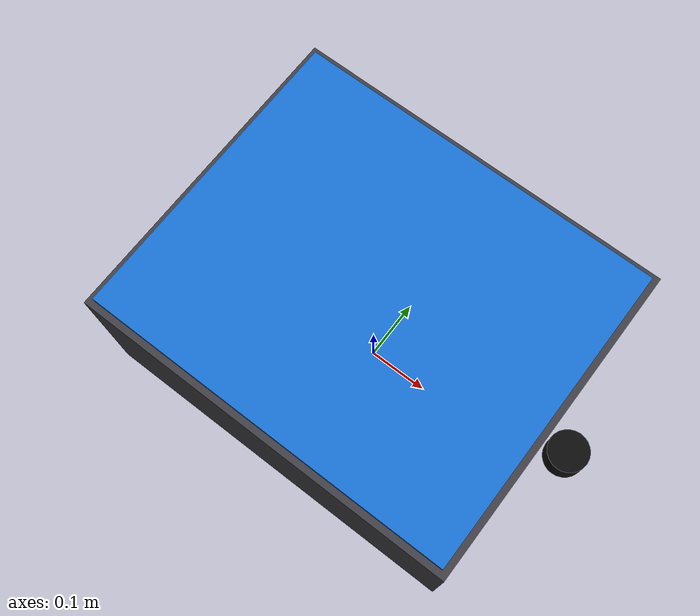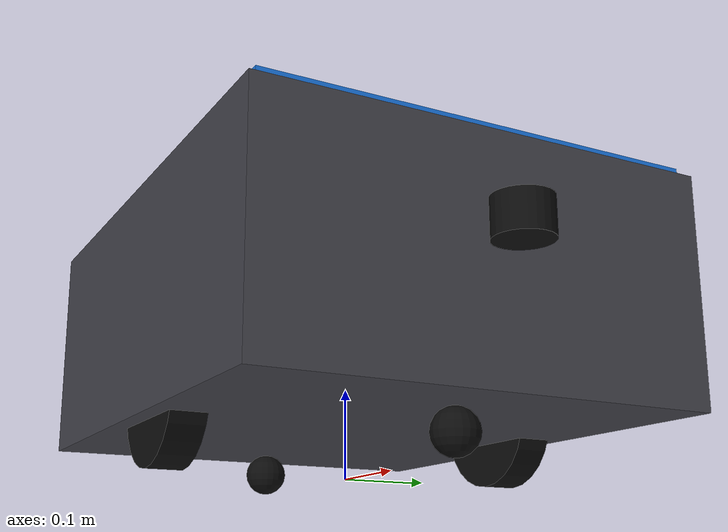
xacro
<?xml version="1.0"?>
<robot xmlns:xacro="http://www.ros.org/wiki/xacro" name="swarmflow_bot">
  <xacro:arg name="robot_id" default="robot_1"/>
  <xacro:arg name="namespace" default="robot_1"/>
  <xacro:arg name="color" default="0.10 0.45 0.85 1"/>
  <xacro:arg name="lidar" default="front"/>
  <!-- realism ladder rung 4 (I-01): lidar noise (m, gaussian stddev) and max range (m) -->
  <xacro:arg name="lidar_noise" default="0.01"/>
  <xacro:arg name="lidar_range" default="8.0"/>
  <xacro:property name="slot360" value="${'$(arg lidar)' == 'slot360'}"/>
  <xacro:property name="ns" value="$(arg namespace)"/>

  <xacro:property name="body_l" value="0.60"/>
  <xacro:property name="body_w" value="0.50"/>
  <xacro:property name="body_h" value="0.25"/>
  <xacro:property name="wheel_r" value="0.075"/>
  <xacro:property name="wheel_w" value="0.04"/>
  <xacro:property name="track" value="0.42"/>
  <xacro:property name="body_z" value="${0.05 + body_h / 2 - wheel_r}"/>  <!-- body centre above base_link -->
  <xacro:property name="caster_r" value="0.025"/>
  <xacro:property name="mass" value="20.0"/>

  <material name="body"><color rgba="0.25 0.25 0.28 1"/></material>
  <material name="id_color"><color rgba="$(arg color)"/></material>
  <material name="black"><color rgba="0.05 0.05 0.05 1"/></material>

  <link name="base_footprint"/>
  <joint name="base_joint" type="fixed">
    <parent link="base_footprint"/><child link="base_link"/>
    <origin xyz="0 0 ${wheel_r}" rpy="0 0 0"/>
  </joint>

  <link name="base_link">
    <xacro:unless value="${slot360}">
      <visual>
        <origin xyz="0 0 ${body_z}"/>
        <geometry><box size="${body_l} ${body_w} ${body_h}"/></geometry>
        <material name="body"/>
      </visual>
    </xacro:unless>
    <xacro:if value="${slot360}">
      <!-- lower chassis 0.05-0.17 m, slot 0.17-0.23 m, top deck 0.23-0.30 m (heights above the ground) -->
      <visual>
        <origin xyz="0 0 ${0.11 - wheel_r}"/>
        <geometry><box size="${body_l} ${body_w} 0.12"/></geometry>
        <material name="body"/>
      </visual>
      <visual>
        <origin xyz="0 0 ${0.265 - wheel_r}"/>
        <geometry><box size="${body_l} ${body_w} 0.07"/></geometry>
        <material name="body"/>
      </visual>
      <xacro:macro name="post" params="x y">
        <visual>
          <origin xyz="${x} ${y} ${0.20 - wheel_r}"/>
          <geometry><box size="0.02 0.02 0.06"/></geometry>
          <material name="body"/>
        </visual>
      </xacro:macro>
      <xacro:post x="${body_l / 2 - 0.01}" y="${body_w / 2 - 0.01}"/>
      <xacro:post x="${body_l / 2 - 0.01}" y="${-body_w / 2 + 0.01}"/>
      <xacro:post x="${-body_l / 2 + 0.01}" y="${body_w / 2 - 0.01}"/>
      <xacro:post x="${-body_l / 2 + 0.01}" y="${-body_w / 2 + 0.01}"/>
    </xacro:if>
    <!-- coloured top plate = cargo platform + ID colour -->
    <visual>
      <origin xyz="0 0 ${body_z + body_h / 2 + 0.005}"/>
      <geometry><box size="${body_l - 0.02} ${body_w - 0.02} 0.01"/></geometry>
      <material name="id_color"/>
    </visual>
    <!-- robot-number panel at the rear (visual only, flat so it never blocks a payload) -->
    <visual>
      <origin xyz="${-body_l / 2 - 0.006} 0 ${body_z}"/>
      <geometry><box size="0.01 0.30 0.15"/></geometry>
      <material name="id_color"/>
    </visual>
    <collision>
      <origin xyz="0 0 ${body_z}"/>
      <geometry><box size="${body_l} ${body_w} ${body_h}"/></geometry>
    </collision>
    <inertial>
      <origin xyz="0 0 ${body_z}"/>
      <mass value="${mass}"/>
      <inertia ixx="${mass * (body_w**2 + body_h**2) / 12}" ixy="0" ixz="0"
               iyy="${mass * (body_l**2 + body_h**2) / 12}" iyz="0"
               izz="${mass * (body_l**2 + body_w**2) / 12}"/>
    </inertial>
  </link>

  <xacro:macro name="wheel" params="side y">
    <link name="${side}_wheel_link">
      <visual><origin rpy="${pi / 2} 0 0"/><geometry><cylinder radius="${wheel_r}" length="${wheel_w}"/></geometry>
        <material name="black"/></visual>
      <collision><origin rpy="${pi / 2} 0 0"/><geometry><cylinder radius="${wheel_r}" length="${wheel_w}"/></geometry></collision>
      <inertial><mass value="1.0"/>
        <inertia ixx="0.0015" ixy="0" ixz="0" iyy="0.0015" iyz="0" izz="0.0028"/></inertial>
    </link>
    <joint name="${side}_wheel_joint" type="continuous">
      <parent link="base_link"/><child link="${side}_wheel_link"/>
      <origin xyz="0 ${y} 0"/><axis xyz="0 1 0"/>
    </joint>
    <gazebo reference="${side}_wheel_link">
      <collision><surface><friction><ode><mu>1.0</mu><mu2>1.0</mu2></ode></friction></surface></collision>
    </gazebo>
  </xacro:macro>
  <xacro:wheel side="left" y="${track / 2}"/>
  <xacro:wheel side="right" y="${-track / 2}"/>

  <xacro:macro name="caster" params="name x">
    <link name="${name}_caster_link">
      <visual><geometry><sphere radius="${caster_r}"/></geometry><material name="black"/></visual>
      <collision><geometry><sphere radius="${caster_r}"/></geometry></collision>
      <inertial><mass value="0.2"/><inertia ixx="5e-5" ixy="0" ixz="0" iyy="5e-5" iyz="0" izz="5e-5"/></inertial>
    </link>
    <joint name="${name}_caster_joint" type="fixed">
      <parent link="base_link"/><child link="${name}_caster_link"/>
      <origin xyz="${x} 0 ${caster_r - wheel_r}"/>
    </joint>
    <gazebo reference="${name}_caster_link">
      <collision><surface><friction><ode><mu>0.0</mu><mu2>0.0</mu2></ode></friction></surface></collision>
    </gazebo>
  </xacro:macro>
  <xacro:caster name="front" x="0.22"/>
  <xacro:caster name="rear" x="-0.22"/>

  <link name="lidar_link">
    <visual><geometry><cylinder radius="0.03" length="0.04"/></geometry><material name="black"/></visual>
    <inertial><mass value="0.1"/><inertia ixx="1e-5" ixy="0" ixz="0" iyy="1e-5" iyz="0" izz="1e-5"/></inertial>
  </link>
  <joint name="lidar_joint" type="fixed">
    <parent link="base_link"/><child link="lidar_link"/>
    <origin xyz="${0.0 if slot360 else body_l / 2 + 0.035} 0 ${0.20 - wheel_r}"/>
  </joint>

  <gazebo reference="lidar_link">
    <sensor name="lidar" type="gpu_lidar">
      <gz_frame_id>lidar_link</gz_frame_id>
      <topic>${ns}/scan</topic>
      <update_rate>10</update_rate>
      <always_on>1</always_on>
      <visualize>false</visualize>
      <lidar>
        <xacro:if value="${slot360}">
          <scan><horizontal><samples>360</samples><resolution>1</resolution>
            <min_angle>-3.14159</min_angle><max_angle>3.12414</max_angle></horizontal></scan>
        </xacro:if>
        <xacro:unless value="${slot360}">
          <scan><horizontal><samples>181</samples><resolution>1</resolution>
            <min_angle>-1.5708</min_angle><max_angle>1.5708</max_angle></horizontal></scan>
        </xacro:unless>
        <range><min>0.12</min><max>$(arg lidar_range)</max><resolution>0.01</resolution></range>
        <noise><type>gaussian</type><mean>0.0</mean><stddev>$(arg lidar_noise)</stddev></noise>
      </lidar>
    </sensor>
  </gazebo>

  <gazebo>
    <plugin filename="gz-sim-diff-drive-system" name="gz::sim::systems::DiffDrive">
      <left_joint>left_wheel_joint</left_joint>
      <right_joint>right_wheel_joint</right_joint>
      <wheel_separation>${track}</wheel_separation>
      <wheel_radius>${wheel_r}</wheel_radius>
      <max_linear_acceleration>2.5</max_linear_acceleration>
      <max_angular_acceleration>3.2</max_angular_acceleration>
      <max_linear_velocity>0.6</max_linear_velocity>
      <max_angular_velocity>1.5</max_angular_velocity>
      <topic>${ns}/cmd_vel</topic>
      <!-- wheel odometry drifts with slip (M4 finding) → kept on its own topic for comparison only -->
      <odom_topic>${ns}/wheel_odom</odom_topic>
      <tf_topic>${ns}/wheel_tf</tf_topic>
      <frame_id>odom</frame_id>
      <child_frame_id>base_footprint</child_frame_id>
      <odom_publish_frequency>20</odom_publish_frequency>
    </plugin>
    <!-- Gazebo ground-truth odometry (design §7.6 ground-truth localization): odom → base_footprint, no drift -->
    <plugin filename="gz-sim-odometry-publisher-system" name="gz::sim::systems::OdometryPublisher">
      <odom_frame>odom</odom_frame>
      <robot_base_frame>base_footprint</robot_base_frame>
      <odom_topic>${ns}/odom</odom_topic>
      <tf_topic>${ns}/tf</tf_topic>
      <dimensions>2</dimensions>
      <odom_publish_frequency>30</odom_publish_frequency>
    </plugin>
    <plugin filename="gz-sim-joint-state-publisher-system" name="gz::sim::systems::JointStatePublisher">
      <topic>${ns}/joint_states</topic>
      <update_rate>10</update_rate>
    </plugin>
  </gazebo>
</robot>
